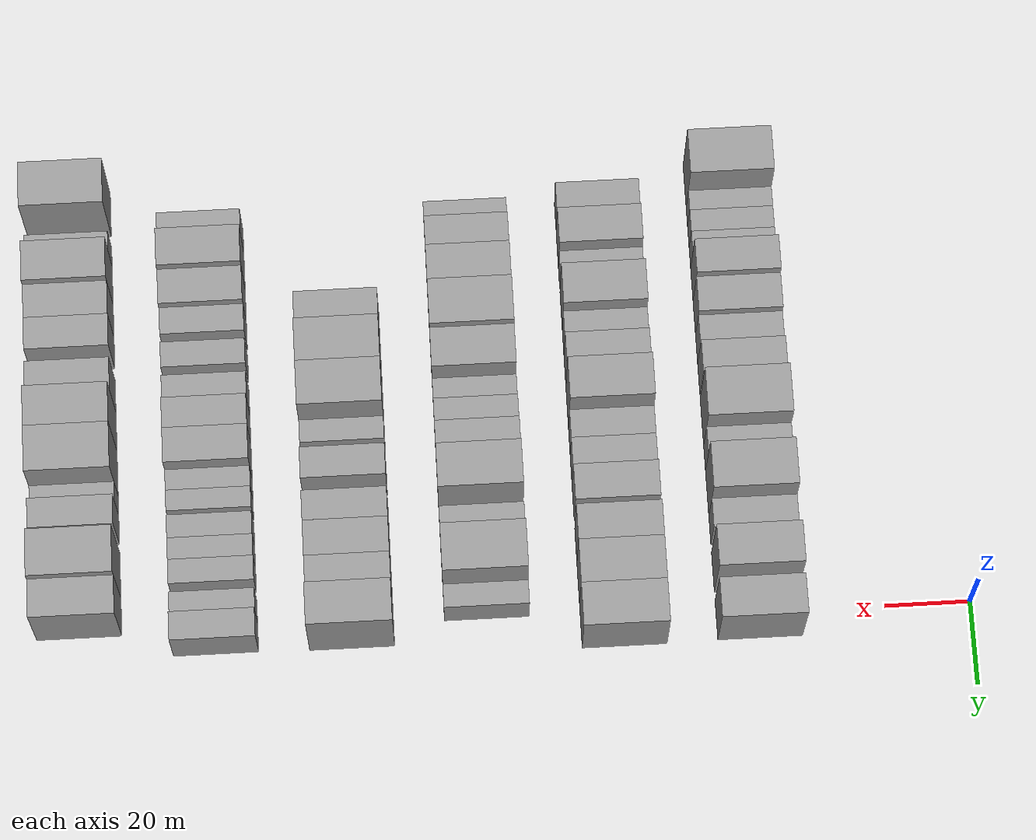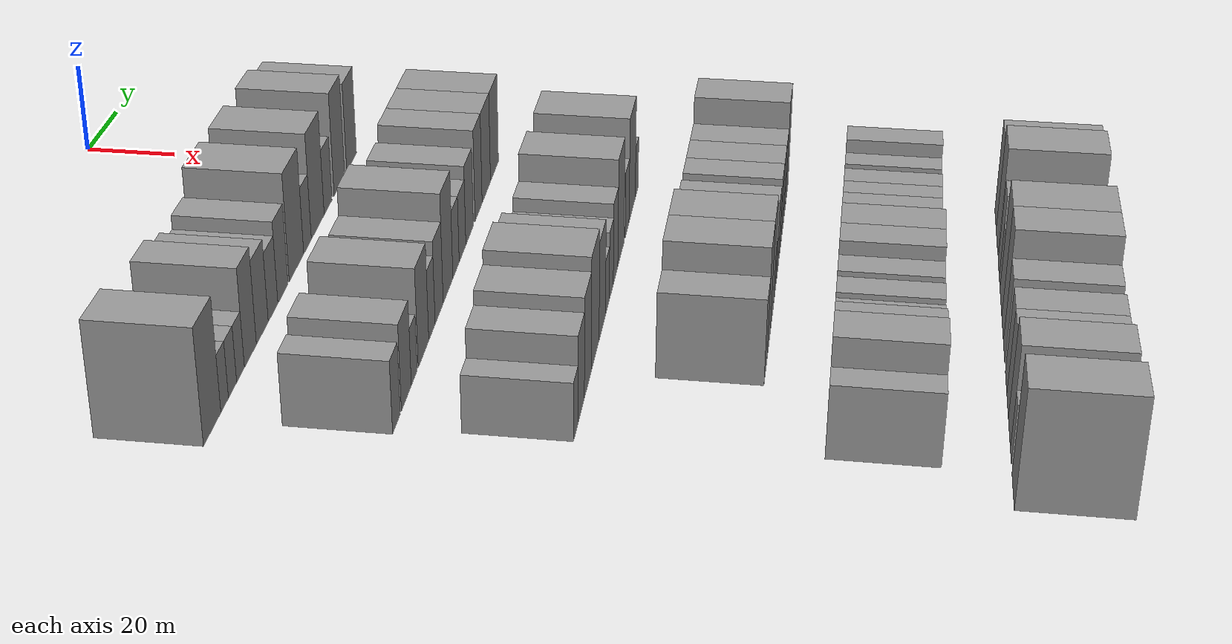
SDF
<sdf version="1.6">
 <world name="default">
  <model name="building_53">
   <static>1</static>
   <pose>50.0000 -108.2480 0 0.000000 0.000000 0.000000</pose>
   <link name="link">
    <pose>0 0 12.00 0 0 0</pose>
    <collision name="collision"><geometry><box><size>20.0000 11.0234 24.0000</size></box></geometry></collision>
    <visual name="visual">
     <cast_shadows>0</cast_shadows>
     <geometry><box><size>20.0000 11.0234 24.0000</size></box></geometry>
     <material>
      <script>
       <uri>model://grey_wall/materials/scripts</uri>
       <uri>model://grey_wall/materials/textures</uri>
       <name>vrc/grey_wall</name>
      </script>
     </material>
    </visual>
   </link>
  </model>
  <model name="building_54">
   <static>1</static>
   <pose>50.0000 -100.2586 0 0.000000 0.000000 0.000000</pose>
   <link name="link">
    <pose>0 0 6.00 0 0 0</pose>
    <collision name="collision"><geometry><box><size>20.0000 4.9554 12.0000</size></box></geometry></collision>
    <visual name="visual">
     <cast_shadows>0</cast_shadows>
     <geometry><box><size>20.0000 4.9554 12.0000</size></box></geometry>
     <material>
      <script>
       <uri>model://grey_wall/materials/scripts</uri>
       <uri>model://grey_wall/materials/textures</uri>
       <name>vrc/grey_wall</name>
      </script>
     </material>
    </visual>
   </link>
  </model>
  <model name="building_55">
   <static>1</static>
   <pose>50.0000 -95.0458 0 0.000000 0.000000 0.000000</pose>
   <link name="link">
    <pose>0 0 6.00 0 0 0</pose>
    <collision name="collision"><geometry><box><size>20.0000 5.4702 12.0000</size></box></geometry></collision>
    <visual name="visual">
     <cast_shadows>0</cast_shadows>
     <geometry><box><size>20.0000 5.4702 12.0000</size></box></geometry>
     <material>
      <script>
       <uri>model://grey_wall/materials/scripts</uri>
       <uri>model://grey_wall/materials/textures</uri>
       <name>vrc/grey_wall</name>
      </script>
     </material>
    </visual>
   </link>
  </model>
  <model name="building_56">
   <static>1</static>
   <pose>50.0000 -89.6483 0 0.000000 0.000000 0.000000</pose>
   <link name="link">
    <pose>0 0 6.00 0 0 0</pose>
    <collision name="collision"><geometry><box><size>20.0000 5.3247 12.0000</size></box></geometry></collision>
    <visual name="visual">
     <cast_shadows>0</cast_shadows>
     <geometry><box><size>20.0000 5.3247 12.0000</size></box></geometry>
     <material>
      <script>
       <uri>model://grey_wall/materials/scripts</uri>
       <uri>model://grey_wall/materials/textures</uri>
       <name>vrc/grey_wall</name>
      </script>
     </material>
    </visual>
   </link>
  </model>
  <model name="building_57">
   <static>1</static>
   <pose>50.0000 -82.7747 0 0.000000 0.000000 0.000000</pose>
   <link name="link">
    <pose>0 0 10.50 0 0 0</pose>
    <collision name="collision"><geometry><box><size>20.0000 8.4225 21.0000</size></box></geometry></collision>
    <visual name="visual">
     <cast_shadows>0</cast_shadows>
     <geometry><box><size>20.0000 8.4225 21.0000</size></box></geometry>
     <material>
      <script>
       <uri>model://grey_wall/materials/scripts</uri>
       <uri>model://grey_wall/materials/textures</uri>
       <name>vrc/grey_wall</name>
      </script>
     </material>
    </visual>
   </link>
  </model>
  <model name="building_58">
   <static>1</static>
   <pose>50.0000 -74.2326 0 0.000000 0.000000 0.000000</pose>
   <link name="link">
    <pose>0 0 9.00 0 0 0</pose>
    <collision name="collision"><geometry><box><size>20.0000 8.6617 18.0000</size></box></geometry></collision>
    <visual name="visual">
     <cast_shadows>0</cast_shadows>
     <geometry><box><size>20.0000 8.6617 18.0000</size></box></geometry>
     <material>
      <script>
       <uri>model://grey_wall/materials/scripts</uri>
       <uri>model://grey_wall/materials/textures</uri>
       <name>vrc/grey_wall</name>
      </script>
     </material>
    </visual>
   </link>
  </model>
  <model name="building_59">
   <static>1</static>
   <pose>50.0000 -66.2687 0 0.000000 0.000000 0.000000</pose>
   <link name="link">
    <pose>0 0 7.50 0 0 0</pose>
    <collision name="collision"><geometry><box><size>20.0000 7.2660 15.0000</size></box></geometry></collision>
    <visual name="visual">
     <cast_shadows>0</cast_shadows>
     <geometry><box><size>20.0000 7.2660 15.0000</size></box></geometry>
     <material>
      <script>
       <uri>model://grey_wall/materials/scripts</uri>
       <uri>model://grey_wall/materials/textures</uri>
       <name>vrc/grey_wall</name>
      </script>
     </material>
    </visual>
   </link>
  </model>
  <model name="building_60">
   <static>1</static>
   <pose>50.0000 -58.7172 0 0.000000 0.000000 0.000000</pose>
   <link name="link">
    <pose>0 0 9.00 0 0 0</pose>
    <collision name="collision"><geometry><box><size>20.0000 7.8371 18.0000</size></box></geometry></collision>
    <visual name="visual">
     <cast_shadows>0</cast_shadows>
     <geometry><box><size>20.0000 7.8371 18.0000</size></box></geometry>
     <material>
      <script>
       <uri>model://grey_wall/materials/scripts</uri>
       <uri>model://grey_wall/materials/textures</uri>
       <name>vrc/grey_wall</name>
      </script>
     </material>
    </visual>
   </link>
  </model>
  <model name="building_61">
   <static>1</static>
   <pose>50.0000 -47.9027 0 0.000000 0.000000 0.000000</pose>
   <link name="link">
    <pose>0 0 12.00 0 0 0</pose>
    <collision name="collision"><geometry><box><size>20.0000 11.7918 24.0000</size></box></geometry></collision>
    <visual name="visual">
     <cast_shadows>0</cast_shadows>
     <geometry><box><size>20.0000 11.7918 24.0000</size></box></geometry>
     <material>
      <script>
       <uri>model://grey_wall/materials/scripts</uri>
       <uri>model://grey_wall/materials/textures</uri>
       <name>vrc/grey_wall</name>
      </script>
     </material>
    </visual>
   </link>
  </model>
  <model name="building_62">
   <static>1</static>
   <pose>50.0000 -38.7945 0 0.000000 0.000000 0.000000</pose>
   <link name="link">
    <pose>0 0 7.50 0 0 0</pose>
    <collision name="collision"><geometry><box><size>20.0000 6.4246 15.0000</size></box></geometry></collision>
    <visual name="visual">
     <cast_shadows>0</cast_shadows>
     <geometry><box><size>20.0000 6.4246 15.0000</size></box></geometry>
     <material>
      <script>
       <uri>model://grey_wall/materials/scripts</uri>
       <uri>model://grey_wall/materials/textures</uri>
       <name>vrc/grey_wall</name>
      </script>
     </material>
    </visual>
   </link>
  </model>
  <model name="building_63">
   <static>1</static>
   <pose>50.0000 -29.9969 0 0.000000 0.000000 0.000000</pose>
   <link name="link">
    <pose>0 0 12.00 0 0 0</pose>
    <collision name="collision"><geometry><box><size>20.0000 11.1705 24.0000</size></box></geometry></collision>
    <visual name="visual">
     <cast_shadows>0</cast_shadows>
     <geometry><box><size>20.0000 11.1705 24.0000</size></box></geometry>
     <material>
      <script>
       <uri>model://grey_wall/materials/scripts</uri>
       <uri>model://grey_wall/materials/textures</uri>
       <name>vrc/grey_wall</name>
      </script>
     </material>
    </visual>
   </link>
  </model>
  <model name="building_64">
   <static>1</static>
   <pose>50.0000 -20.9240 0 0.000000 0.000000 0.000000</pose>
   <link name="link">
    <pose>0 0 7.50 0 0 0</pose>
    <collision name="collision"><geometry><box><size>20.0000 6.9754 15.0000</size></box></geometry></collision>
    <visual name="visual">
     <cast_shadows>0</cast_shadows>
     <geometry><box><size>20.0000 6.9754 15.0000</size></box></geometry>
     <material>
      <script>
       <uri>model://grey_wall/materials/scripts</uri>
       <uri>model://grey_wall/materials/textures</uri>
       <name>vrc/grey_wall</name>
      </script>
     </material>
    </visual>
   </link>
  </model>
  <model name="building_65">
   <static>1</static>
   <pose>50.0000 -10.5199 0 0.000000 0.000000 0.000000</pose>
   <link name="link">
    <pose>0 0 12.00 0 0 0</pose>
    <collision name="collision"><geometry><box><size>20.0000 9.8328 24.0000</size></box></geometry></collision>
    <visual name="visual">
     <cast_shadows>0</cast_shadows>
     <geometry><box><size>20.0000 9.8328 24.0000</size></box></geometry>
     <material>
      <script>
       <uri>model://grey_wall/materials/scripts</uri>
       <uri>model://grey_wall/materials/textures</uri>
       <name>vrc/grey_wall</name>
      </script>
     </material>
    </visual>
   </link>
  </model>
  <model name="building_66">
   <static>1</static>
   <pose>50.0000 1.1582 0 0.000000 0.000000 0.000000</pose>
   <link name="link">
    <pose>0 0 10.50 0 0 0</pose>
    <collision name="collision"><geometry><box><size>20.0000 9.5234 21.0000</size></box></geometry></collision>
    <visual name="visual">
     <cast_shadows>0</cast_shadows>
     <geometry><box><size>20.0000 9.5234 21.0000</size></box></geometry>
     <material>
      <script>
       <uri>model://grey_wall/materials/scripts</uri>
       <uri>model://grey_wall/materials/textures</uri>
       <name>vrc/grey_wall</name>
      </script>
     </material>
    </visual>
   </link>
  </model>
  <model name="building_182">
   <static>1</static>
   <pose>82.0000 -102.0957 0 0.000000 0.000000 0.000000</pose>
   <link name="link">
    <pose>0 0 7.50 0 0 0</pose>
    <collision name="collision"><geometry><box><size>20.0000 6.5473 15.0000</size></box></geometry></collision>
    <visual name="visual">
     <cast_shadows>0</cast_shadows>
     <geometry><box><size>20.0000 6.5473 15.0000</size></box></geometry>
     <material>
      <script>
       <uri>model://grey_wall/materials/scripts</uri>
       <uri>model://grey_wall/materials/textures</uri>
       <name>vrc/grey_wall</name>
      </script>
     </material>
    </visual>
   </link>
  </model>
  <model name="building_183">
   <static>1</static>
   <pose>82.0000 -93.3985 0 0.000000 0.000000 0.000000</pose>
   <link name="link">
    <pose>0 0 9.00 0 0 0</pose>
    <collision name="collision"><geometry><box><size>20.0000 8.8470 18.0000</size></box></geometry></collision>
    <visual name="visual">
     <cast_shadows>0</cast_shadows>
     <geometry><box><size>20.0000 8.8470 18.0000</size></box></geometry>
     <material>
      <script>
       <uri>model://grey_wall/materials/scripts</uri>
       <uri>model://grey_wall/materials/textures</uri>
       <name>vrc/grey_wall</name>
      </script>
     </material>
    </visual>
   </link>
  </model>
  <model name="building_184">
   <static>1</static>
   <pose>82.0000 -86.3039 0 0.000000 0.000000 0.000000</pose>
   <link name="link">
    <pose>0 0 6.00 0 0 0</pose>
    <collision name="collision"><geometry><box><size>20.0000 5.3422 12.0000</size></box></geometry></collision>
    <visual name="visual">
     <cast_shadows>0</cast_shadows>
     <geometry><box><size>20.0000 5.3422 12.0000</size></box></geometry>
     <material>
      <script>
       <uri>model://grey_wall/materials/scripts</uri>
       <uri>model://grey_wall/materials/textures</uri>
       <name>vrc/grey_wall</name>
      </script>
     </material>
    </visual>
   </link>
  </model>
  <model name="building_185">
   <static>1</static>
   <pose>82.0000 -77.6232 0 0.000000 0.000000 0.000000</pose>
   <link name="link">
    <pose>0 0 10.50 0 0 0</pose>
    <collision name="collision"><geometry><box><size>20.0000 10.0193 21.0000</size></box></geometry></collision>
    <visual name="visual">
     <cast_shadows>0</cast_shadows>
     <geometry><box><size>20.0000 10.0193 21.0000</size></box></geometry>
     <material>
      <script>
       <uri>model://grey_wall/materials/scripts</uri>
       <uri>model://grey_wall/materials/textures</uri>
       <name>vrc/grey_wall</name>
      </script>
     </material>
    </visual>
   </link>
  </model>
  <model name="building_186">
   <static>1</static>
   <pose>82.0000 -69.4738 0 0.000000 0.000000 0.000000</pose>
   <link name="link">
    <pose>0 0 7.50 0 0 0</pose>
    <collision name="collision"><geometry><box><size>20.0000 6.2795 15.0000</size></box></geometry></collision>
    <visual name="visual">
     <cast_shadows>0</cast_shadows>
     <geometry><box><size>20.0000 6.2795 15.0000</size></box></geometry>
     <material>
      <script>
       <uri>model://grey_wall/materials/scripts</uri>
       <uri>model://grey_wall/materials/textures</uri>
       <name>vrc/grey_wall</name>
      </script>
     </material>
    </visual>
   </link>
  </model>
  <model name="building_187">
   <static>1</static>
   <pose>82.0000 -62.2552 0 0.000000 0.000000 0.000000</pose>
   <link name="link">
    <pose>0 0 9.00 0 0 0</pose>
    <collision name="collision"><geometry><box><size>20.0000 8.1578 18.0000</size></box></geometry></collision>
    <visual name="visual">
     <cast_shadows>0</cast_shadows>
     <geometry><box><size>20.0000 8.1578 18.0000</size></box></geometry>
     <material>
      <script>
       <uri>model://grey_wall/materials/scripts</uri>
       <uri>model://grey_wall/materials/textures</uri>
       <name>vrc/grey_wall</name>
      </script>
     </material>
    </visual>
   </link>
  </model>
  <model name="building_188">
   <static>1</static>
   <pose>82.0000 -53.0809 0 0.000000 0.000000 0.000000</pose>
   <link name="link">
    <pose>0 0 12.00 0 0 0</pose>
    <collision name="collision"><geometry><box><size>20.0000 10.1907 24.0000</size></box></geometry></collision>
    <visual name="visual">
     <cast_shadows>0</cast_shadows>
     <geometry><box><size>20.0000 10.1907 24.0000</size></box></geometry>
     <material>
      <script>
       <uri>model://grey_wall/materials/scripts</uri>
       <uri>model://grey_wall/materials/textures</uri>
       <name>vrc/grey_wall</name>
      </script>
     </material>
    </visual>
   </link>
  </model>
  <model name="building_189">
   <static>1</static>
   <pose>82.0000 -44.5590 0 0.000000 0.000000 0.000000</pose>
   <link name="link">
    <pose>0 0 7.50 0 0 0</pose>
    <collision name="collision"><geometry><box><size>20.0000 6.8531 15.0000</size></box></geometry></collision>
    <visual name="visual">
     <cast_shadows>0</cast_shadows>
     <geometry><box><size>20.0000 6.8531 15.0000</size></box></geometry>
     <material>
      <script>
       <uri>model://grey_wall/materials/scripts</uri>
       <uri>model://grey_wall/materials/textures</uri>
       <name>vrc/grey_wall</name>
      </script>
     </material>
    </visual>
   </link>
  </model>
  <model name="building_190">
   <static>1</static>
   <pose>82.0000 -37.4028 0 0.000000 0.000000 0.000000</pose>
   <link name="link">
    <pose>0 0 7.50 0 0 0</pose>
    <collision name="collision"><geometry><box><size>20.0000 7.4593 15.0000</size></box></geometry></collision>
    <visual name="visual">
     <cast_shadows>0</cast_shadows>
     <geometry><box><size>20.0000 7.4593 15.0000</size></box></geometry>
     <material>
      <script>
       <uri>model://grey_wall/materials/scripts</uri>
       <uri>model://grey_wall/materials/textures</uri>
       <name>vrc/grey_wall</name>
      </script>
     </material>
    </visual>
   </link>
  </model>
  <model name="building_191">
   <static>1</static>
   <pose>82.0000 -29.3570 0 0.000000 0.000000 0.000000</pose>
   <link name="link">
    <pose>0 0 9.00 0 0 0</pose>
    <collision name="collision"><geometry><box><size>20.0000 8.6322 18.0000</size></box></geometry></collision>
    <visual name="visual">
     <cast_shadows>0</cast_shadows>
     <geometry><box><size>20.0000 8.6322 18.0000</size></box></geometry>
     <material>
      <script>
       <uri>model://grey_wall/materials/scripts</uri>
       <uri>model://grey_wall/materials/textures</uri>
       <name>vrc/grey_wall</name>
      </script>
     </material>
    </visual>
   </link>
  </model>
  <model name="building_192">
   <static>1</static>
   <pose>82.0000 -18.7790 0 0.000000 0.000000 0.000000</pose>
   <link name="link">
    <pose>0 0 10.50 0 0 0</pose>
    <collision name="collision"><geometry><box><size>20.0000 8.5237 21.0000</size></box></geometry></collision>
    <visual name="visual">
     <cast_shadows>0</cast_shadows>
     <geometry><box><size>20.0000 8.5237 21.0000</size></box></geometry>
     <material>
      <script>
       <uri>model://grey_wall/materials/scripts</uri>
       <uri>model://grey_wall/materials/textures</uri>
       <name>vrc/grey_wall</name>
      </script>
     </material>
    </visual>
   </link>
  </model>
  <model name="building_193">
   <static>1</static>
   <pose>82.0000 -9.3183 0 0.000000 0.000000 0.000000</pose>
   <link name="link">
    <pose>0 0 10.50 0 0 0</pose>
    <collision name="collision"><geometry><box><size>20.0000 10.3978 21.0000</size></box></geometry></collision>
    <visual name="visual">
     <cast_shadows>0</cast_shadows>
     <geometry><box><size>20.0000 10.3978 21.0000</size></box></geometry>
     <material>
      <script>
       <uri>model://grey_wall/materials/scripts</uri>
       <uri>model://grey_wall/materials/textures</uri>
       <name>vrc/grey_wall</name>
      </script>
     </material>
    </visual>
   </link>
  </model>
  <model name="building_194">
   <static>1</static>
   <pose>82.0000 1.0268 0 0.000000 0.000000 0.000000</pose>
   <link name="link">
    <pose>0 0 10.50 0 0 0</pose>
    <collision name="collision"><geometry><box><size>20.0000 10.2924 21.0000</size></box></geometry></collision>
    <visual name="visual">
     <cast_shadows>0</cast_shadows>
     <geometry><box><size>20.0000 10.2924 21.0000</size></box></geometry>
     <material>
      <script>
       <uri>model://grey_wall/materials/scripts</uri>
       <uri>model://grey_wall/materials/textures</uri>
       <name>vrc/grey_wall</name>
      </script>
     </material>
    </visual>
   </link>
  </model>
  <model name="building_309">
   <static>1</static>
   <pose>114.0000 -100.3884 0 0.000000 0.000000 0.000000</pose>
   <link name="link">
    <pose>0 0 6.00 0 0 0</pose>
    <collision name="collision"><geometry><box><size>20.0000 5.8942 12.0000</size></box></geometry></collision>
    <visual name="visual">
     <cast_shadows>0</cast_shadows>
     <geometry><box><size>20.0000 5.8942 12.0000</size></box></geometry>
     <material>
      <script>
       <uri>model://grey_wall/materials/scripts</uri>
       <uri>model://grey_wall/materials/textures</uri>
       <name>vrc/grey_wall</name>
      </script>
     </material>
    </visual>
   </link>
  </model>
  <model name="building_310">
   <static>1</static>
   <pose>114.0000 -93.2360 0 0.000000 0.000000 0.000000</pose>
   <link name="link">
    <pose>0 0 9.00 0 0 0</pose>
    <collision name="collision"><geometry><box><size>20.0000 8.4105 18.0000</size></box></geometry></collision>
    <visual name="visual">
     <cast_shadows>0</cast_shadows>
     <geometry><box><size>20.0000 8.4105 18.0000</size></box></geometry>
     <material>
      <script>
       <uri>model://grey_wall/materials/scripts</uri>
       <uri>model://grey_wall/materials/textures</uri>
       <name>vrc/grey_wall</name>
      </script>
     </material>
    </visual>
   </link>
  </model>
  <model name="building_311">
   <static>1</static>
   <pose>114.0000 -84.1753 0 0.000000 0.000000 0.000000</pose>
   <link name="link">
    <pose>0 0 10.50 0 0 0</pose>
    <collision name="collision"><geometry><box><size>20.0000 9.7109 21.0000</size></box></geometry></collision>
    <visual name="visual">
     <cast_shadows>0</cast_shadows>
     <geometry><box><size>20.0000 9.7109 21.0000</size></box></geometry>
     <material>
      <script>
       <uri>model://grey_wall/materials/scripts</uri>
       <uri>model://grey_wall/materials/textures</uri>
       <name>vrc/grey_wall</name>
      </script>
     </material>
    </visual>
   </link>
  </model>
  <model name="building_312">
   <static>1</static>
   <pose>114.0000 -73.7366 0 0.000000 0.000000 0.000000</pose>
   <link name="link">
    <pose>0 0 12.00 0 0 0</pose>
    <collision name="collision"><geometry><box><size>20.0000 11.1665 24.0000</size></box></geometry></collision>
    <visual name="visual">
     <cast_shadows>0</cast_shadows>
     <geometry><box><size>20.0000 11.1665 24.0000</size></box></geometry>
     <material>
      <script>
       <uri>model://grey_wall/materials/scripts</uri>
       <uri>model://grey_wall/materials/textures</uri>
       <name>vrc/grey_wall</name>
      </script>
     </material>
    </visual>
   </link>
  </model>
  <model name="building_313">
   <static>1</static>
   <pose>114.0000 -63.3302 0 0.000000 0.000000 0.000000</pose>
   <link name="link">
    <pose>0 0 10.50 0 0 0</pose>
    <collision name="collision"><geometry><box><size>20.0000 9.6463 21.0000</size></box></geometry></collision>
    <visual name="visual">
     <cast_shadows>0</cast_shadows>
     <geometry><box><size>20.0000 9.6463 21.0000</size></box></geometry>
     <material>
      <script>
       <uri>model://grey_wall/materials/scripts</uri>
       <uri>model://grey_wall/materials/textures</uri>
       <name>vrc/grey_wall</name>
      </script>
     </material>
    </visual>
   </link>
  </model>
  <model name="building_314">
   <static>1</static>
   <pose>114.0000 -55.5286 0 0.000000 0.000000 0.000000</pose>
   <link name="link">
    <pose>0 0 6.00 0 0 0</pose>
    <collision name="collision"><geometry><box><size>20.0000 5.9570 12.0000</size></box></geometry></collision>
    <visual name="visual">
     <cast_shadows>0</cast_shadows>
     <geometry><box><size>20.0000 5.9570 12.0000</size></box></geometry>
     <material>
      <script>
       <uri>model://grey_wall/materials/scripts</uri>
       <uri>model://grey_wall/materials/textures</uri>
       <name>vrc/grey_wall</name>
      </script>
     </material>
    </visual>
   </link>
  </model>
  <model name="building_315">
   <static>1</static>
   <pose>114.0000 -49.3363 0 0.000000 0.000000 0.000000</pose>
   <link name="link">
    <pose>0 0 7.50 0 0 0</pose>
    <collision name="collision"><geometry><box><size>20.0000 6.4277 15.0000</size></box></geometry></collision>
    <visual name="visual">
     <cast_shadows>0</cast_shadows>
     <geometry><box><size>20.0000 6.4277 15.0000</size></box></geometry>
     <material>
      <script>
       <uri>model://grey_wall/materials/scripts</uri>
       <uri>model://grey_wall/materials/textures</uri>
       <name>vrc/grey_wall</name>
      </script>
     </material>
    </visual>
   </link>
  </model>
  <model name="building_316">
   <static>1</static>
   <pose>114.0000 -42.3913 0 0.000000 0.000000 0.000000</pose>
   <link name="link">
    <pose>0 0 9.00 0 0 0</pose>
    <collision name="collision"><geometry><box><size>20.0000 7.4623 18.0000</size></box></geometry></collision>
    <visual name="visual">
     <cast_shadows>0</cast_shadows>
     <geometry><box><size>20.0000 7.4623 18.0000</size></box></geometry>
     <material>
      <script>
       <uri>model://grey_wall/materials/scripts</uri>
       <uri>model://grey_wall/materials/textures</uri>
       <name>vrc/grey_wall</name>
      </script>
     </material>
    </visual>
   </link>
  </model>
  <model name="building_317">
   <static>1</static>
   <pose>114.0000 -33.3519 0 0.000000 0.000000 0.000000</pose>
   <link name="link">
    <pose>0 0 12.00 0 0 0</pose>
    <collision name="collision"><geometry><box><size>20.0000 10.6165 24.0000</size></box></geometry></collision>
    <visual name="visual">
     <cast_shadows>0</cast_shadows>
     <geometry><box><size>20.0000 10.6165 24.0000</size></box></geometry>
     <material>
      <script>
       <uri>model://grey_wall/materials/scripts</uri>
       <uri>model://grey_wall/materials/textures</uri>
       <name>vrc/grey_wall</name>
      </script>
     </material>
    </visual>
   </link>
  </model>
  <model name="building_318">
   <static>1</static>
   <pose>114.0000 -22.6525 0 0.000000 0.000000 0.000000</pose>
   <link name="link">
    <pose>0 0 7.50 0 0 0</pose>
    <collision name="collision"><geometry><box><size>20.0000 6.7824 15.0000</size></box></geometry></collision>
    <visual name="visual">
     <cast_shadows>0</cast_shadows>
     <geometry><box><size>20.0000 6.7824 15.0000</size></box></geometry>
     <material>
      <script>
       <uri>model://grey_wall/materials/scripts</uri>
       <uri>model://grey_wall/materials/textures</uri>
       <name>vrc/grey_wall</name>
      </script>
     </material>
    </visual>
   </link>
  </model>
  <model name="building_319">
   <static>1</static>
   <pose>114.0000 -13.5442 0 0.000000 0.000000 0.000000</pose>
   <link name="link">
    <pose>0 0 12.00 0 0 0</pose>
    <collision name="collision"><geometry><box><size>20.0000 11.4341 24.0000</size></box></geometry></collision>
    <visual name="visual">
     <cast_shadows>0</cast_shadows>
     <geometry><box><size>20.0000 11.4341 24.0000</size></box></geometry>
     <material>
      <script>
       <uri>model://grey_wall/materials/scripts</uri>
       <uri>model://grey_wall/materials/textures</uri>
       <name>vrc/grey_wall</name>
      </script>
     </material>
    </visual>
   </link>
  </model>
  <model name="building_320">
   <static>1</static>
   <pose>114.0000 -5.0023 0 0.000000 0.000000 0.000000</pose>
   <link name="link">
    <pose>0 0 6.00 0 0 0</pose>
    <collision name="collision"><geometry><box><size>20.0000 5.6497 12.0000</size></box></geometry></collision>
    <visual name="visual">
     <cast_shadows>0</cast_shadows>
     <geometry><box><size>20.0000 5.6497 12.0000</size></box></geometry>
     <material>
      <script>
       <uri>model://grey_wall/materials/scripts</uri>
       <uri>model://grey_wall/materials/textures</uri>
       <name>vrc/grey_wall</name>
      </script>
     </material>
    </visual>
   </link>
  </model>
  <model name="building_430">
   <static>1</static>
   <pose>146.0000 -75.6125 0 0.000000 0.000000 0.000000</pose>
   <link name="link">
    <pose>0 0 9.00 0 0 0</pose>
    <collision name="collision"><geometry><box><size>20.0000 8.7544 18.0000</size></box></geometry></collision>
    <visual name="visual">
     <cast_shadows>0</cast_shadows>
     <geometry><box><size>20.0000 8.7544 18.0000</size></box></geometry>
     <material>
      <script>
       <uri>model://grey_wall/materials/scripts</uri>
       <uri>model://grey_wall/materials/textures</uri>
       <name>vrc/grey_wall</name>
      </script>
     </material>
    </visual>
   </link>
  </model>
  <model name="building_431">
   <static>1</static>
   <pose>146.0000 -65.9645 0 0.000000 0.000000 0.000000</pose>
   <link name="link">
    <pose>0 0 12.00 0 0 0</pose>
    <collision name="collision"><geometry><box><size>20.0000 10.5416 24.0000</size></box></geometry></collision>
    <visual name="visual">
     <cast_shadows>0</cast_shadows>
     <geometry><box><size>20.0000 10.5416 24.0000</size></box></geometry>
     <material>
      <script>
       <uri>model://grey_wall/materials/scripts</uri>
       <uri>model://grey_wall/materials/textures</uri>
       <name>vrc/grey_wall</name>
      </script>
     </material>
    </visual>
   </link>
  </model>
  <model name="building_432">
   <static>1</static>
   <pose>146.0000 -55.2646 0 0.000000 0.000000 0.000000</pose>
   <link name="link">
    <pose>0 0 12.00 0 0 0</pose>
    <collision name="collision"><geometry><box><size>20.0000 10.8582 24.0000</size></box></geometry></collision>
    <visual name="visual">
     <cast_shadows>0</cast_shadows>
     <geometry><box><size>20.0000 10.8582 24.0000</size></box></geometry>
     <material>
      <script>
       <uri>model://grey_wall/materials/scripts</uri>
       <uri>model://grey_wall/materials/textures</uri>
       <name>vrc/grey_wall</name>
      </script>
     </material>
    </visual>
   </link>
  </model>
  <model name="building_433">
   <static>1</static>
   <pose>146.0000 -47.0521 0 0.000000 0.000000 0.000000</pose>
   <link name="link">
    <pose>0 0 6.00 0 0 0</pose>
    <collision name="collision"><geometry><box><size>20.0000 5.5669 12.0000</size></box></geometry></collision>
    <visual name="visual">
     <cast_shadows>0</cast_shadows>
     <geometry><box><size>20.0000 5.5669 12.0000</size></box></geometry>
     <material>
      <script>
       <uri>model://grey_wall/materials/scripts</uri>
       <uri>model://grey_wall/materials/textures</uri>
       <name>vrc/grey_wall</name>
      </script>
     </material>
    </visual>
   </link>
  </model>
  <model name="building_434">
   <static>1</static>
   <pose>146.0000 -37.4727 0 0.000000 0.000000 0.000000</pose>
   <link name="link">
    <pose>0 0 9.00 0 0 0</pose>
    <collision name="collision"><geometry><box><size>20.0000 7.5919 18.0000</size></box></geometry></collision>
    <visual name="visual">
     <cast_shadows>0</cast_shadows>
     <geometry><box><size>20.0000 7.5919 18.0000</size></box></geometry>
     <material>
      <script>
       <uri>model://grey_wall/materials/scripts</uri>
       <uri>model://grey_wall/materials/textures</uri>
       <name>vrc/grey_wall</name>
      </script>
     </material>
    </visual>
   </link>
  </model>
  <model name="building_435">
   <static>1</static>
   <pose>146.0000 -27.0277 0 0.000000 0.000000 0.000000</pose>
   <link name="link">
    <pose>0 0 9.00 0 0 0</pose>
    <collision name="collision"><geometry><box><size>20.0000 7.2983 18.0000</size></box></geometry></collision>
    <visual name="visual">
     <cast_shadows>0</cast_shadows>
     <geometry><box><size>20.0000 7.2983 18.0000</size></box></geometry>
     <material>
      <script>
       <uri>model://grey_wall/materials/scripts</uri>
       <uri>model://grey_wall/materials/textures</uri>
       <name>vrc/grey_wall</name>
      </script>
     </material>
    </visual>
   </link>
  </model>
  <model name="building_436">
   <static>1</static>
   <pose>146.0000 -19.1147 0 0.000000 0.000000 0.000000</pose>
   <link name="link">
    <pose>0 0 9.00 0 0 0</pose>
    <collision name="collision"><geometry><box><size>20.0000 8.5275 18.0000</size></box></geometry></collision>
    <visual name="visual">
     <cast_shadows>0</cast_shadows>
     <geometry><box><size>20.0000 8.5275 18.0000</size></box></geometry>
     <material>
      <script>
       <uri>model://grey_wall/materials/scripts</uri>
       <uri>model://grey_wall/materials/textures</uri>
       <name>vrc/grey_wall</name>
      </script>
     </material>
    </visual>
   </link>
  </model>
  <model name="building_437">
   <static>1</static>
   <pose>146.0000 -10.8207 0 0.000000 0.000000 0.000000</pose>
   <link name="link">
    <pose>0 0 9.00 0 0 0</pose>
    <collision name="collision"><geometry><box><size>20.0000 8.0606 18.0000</size></box></geometry></collision>
    <visual name="visual">
     <cast_shadows>0</cast_shadows>
     <geometry><box><size>20.0000 8.0606 18.0000</size></box></geometry>
     <material>
      <script>
       <uri>model://grey_wall/materials/scripts</uri>
       <uri>model://grey_wall/materials/textures</uri>
       <name>vrc/grey_wall</name>
      </script>
     </material>
    </visual>
   </link>
  </model>
  <model name="building_438">
   <static>1</static>
   <pose>146.0000 -1.7424 0 0.000000 0.000000 0.000000</pose>
   <link name="link">
    <pose>0 0 12.00 0 0 0</pose>
    <collision name="collision"><geometry><box><size>20.0000 10.0960 24.0000</size></box></geometry></collision>
    <visual name="visual">
     <cast_shadows>0</cast_shadows>
     <geometry><box><size>20.0000 10.0960 24.0000</size></box></geometry>
     <material>
      <script>
       <uri>model://grey_wall/materials/scripts</uri>
       <uri>model://grey_wall/materials/textures</uri>
       <name>vrc/grey_wall</name>
      </script>
     </material>
    </visual>
   </link>
  </model>
  <model name="building_543">
   <static>1</static>
   <pose>178.0000 -99.6889 0 0.000000 0.000000 0.000000</pose>
   <link name="link">
    <pose>0 0 7.50 0 0 0</pose>
    <collision name="collision"><geometry><box><size>20.0000 6.1740 15.0000</size></box></geometry></collision>
    <visual name="visual">
     <cast_shadows>0</cast_shadows>
     <geometry><box><size>20.0000 6.1740 15.0000</size></box></geometry>
     <material>
      <script>
       <uri>model://grey_wall/materials/scripts</uri>
       <uri>model://grey_wall/materials/textures</uri>
       <name>vrc/grey_wall</name>
      </script>
     </material>
    </visual>
   </link>
  </model>
  <model name="building_544">
   <static>1</static>
   <pose>178.0000 -91.9433 0 0.000000 0.000000 0.000000</pose>
   <link name="link">
    <pose>0 0 10.50 0 0 0</pose>
    <collision name="collision"><geometry><box><size>20.0000 9.3171 21.0000</size></box></geometry></collision>
    <visual name="visual">
     <cast_shadows>0</cast_shadows>
     <geometry><box><size>20.0000 9.3171 21.0000</size></box></geometry>
     <material>
      <script>
       <uri>model://grey_wall/materials/scripts</uri>
       <uri>model://grey_wall/materials/textures</uri>
       <name>vrc/grey_wall</name>
      </script>
     </material>
    </visual>
   </link>
  </model>
  <model name="building_545">
   <static>1</static>
   <pose>178.0000 -82.9770 0 0.000000 0.000000 0.000000</pose>
   <link name="link">
    <pose>0 0 9.00 0 0 0</pose>
    <collision name="collision"><geometry><box><size>20.0000 8.6156 18.0000</size></box></geometry></collision>
    <visual name="visual">
     <cast_shadows>0</cast_shadows>
     <geometry><box><size>20.0000 8.6156 18.0000</size></box></geometry>
     <material>
      <script>
       <uri>model://grey_wall/materials/scripts</uri>
       <uri>model://grey_wall/materials/textures</uri>
       <name>vrc/grey_wall</name>
      </script>
     </material>
    </visual>
   </link>
  </model>
  <model name="building_546">
   <static>1</static>
   <pose>178.0000 -75.3381 0 0.000000 0.000000 0.000000</pose>
   <link name="link">
    <pose>0 0 7.50 0 0 0</pose>
    <collision name="collision"><geometry><box><size>20.0000 6.6621 15.0000</size></box></geometry></collision>
    <visual name="visual">
     <cast_shadows>0</cast_shadows>
     <geometry><box><size>20.0000 6.6621 15.0000</size></box></geometry>
     <material>
      <script>
       <uri>model://grey_wall/materials/scripts</uri>
       <uri>model://grey_wall/materials/textures</uri>
       <name>vrc/grey_wall</name>
      </script>
     </material>
    </visual>
   </link>
  </model>
  <model name="building_547">
   <static>1</static>
   <pose>178.0000 -66.8691 0 0.000000 0.000000 0.000000</pose>
   <link name="link">
    <pose>0 0 7.50 0 0 0</pose>
    <collision name="collision"><geometry><box><size>20.0000 6.2760 15.0000</size></box></geometry></collision>
    <visual name="visual">
     <cast_shadows>0</cast_shadows>
     <geometry><box><size>20.0000 6.2760 15.0000</size></box></geometry>
     <material>
      <script>
       <uri>model://grey_wall/materials/scripts</uri>
       <uri>model://grey_wall/materials/textures</uri>
       <name>vrc/grey_wall</name>
      </script>
     </material>
    </visual>
   </link>
  </model>
  <model name="building_548">
   <static>1</static>
   <pose>178.0000 -58.4733 0 0.000000 0.000000 0.000000</pose>
   <link name="link">
    <pose>0 0 7.50 0 0 0</pose>
    <collision name="collision"><geometry><box><size>20.0000 6.5156 15.0000</size></box></geometry></collision>
    <visual name="visual">
     <cast_shadows>0</cast_shadows>
     <geometry><box><size>20.0000 6.5156 15.0000</size></box></geometry>
     <material>
      <script>
       <uri>model://grey_wall/materials/scripts</uri>
       <uri>model://grey_wall/materials/textures</uri>
       <name>vrc/grey_wall</name>
      </script>
     </material>
    </visual>
   </link>
  </model>
  <model name="building_549">
   <static>1</static>
   <pose>178.0000 -51.4909 0 0.000000 0.000000 0.000000</pose>
   <link name="link">
    <pose>0 0 9.00 0 0 0</pose>
    <collision name="collision"><geometry><box><size>20.0000 7.4491 18.0000</size></box></geometry></collision>
    <visual name="visual">
     <cast_shadows>0</cast_shadows>
     <geometry><box><size>20.0000 7.4491 18.0000</size></box></geometry>
     <material>
      <script>
       <uri>model://grey_wall/materials/scripts</uri>
       <uri>model://grey_wall/materials/textures</uri>
       <name>vrc/grey_wall</name>
      </script>
     </material>
    </visual>
   </link>
  </model>
  <model name="building_550">
   <static>1</static>
   <pose>178.0000 -43.5129 0 0.000000 0.000000 0.000000</pose>
   <link name="link">
    <pose>0 0 9.00 0 0 0</pose>
    <collision name="collision"><geometry><box><size>20.0000 8.5069 18.0000</size></box></geometry></collision>
    <visual name="visual">
     <cast_shadows>0</cast_shadows>
     <geometry><box><size>20.0000 8.5069 18.0000</size></box></geometry>
     <material>
      <script>
       <uri>model://grey_wall/materials/scripts</uri>
       <uri>model://grey_wall/materials/textures</uri>
       <name>vrc/grey_wall</name>
      </script>
     </material>
    </visual>
   </link>
  </model>
  <model name="building_551">
   <static>1</static>
   <pose>178.0000 -36.7416 0 0.000000 0.000000 0.000000</pose>
   <link name="link">
    <pose>0 0 6.00 0 0 0</pose>
    <collision name="collision"><geometry><box><size>20.0000 5.0357 12.0000</size></box></geometry></collision>
    <visual name="visual">
     <cast_shadows>0</cast_shadows>
     <geometry><box><size>20.0000 5.0357 12.0000</size></box></geometry>
     <material>
      <script>
       <uri>model://grey_wall/materials/scripts</uri>
       <uri>model://grey_wall/materials/textures</uri>
       <name>vrc/grey_wall</name>
      </script>
     </material>
    </visual>
   </link>
  </model>
  <model name="building_552">
   <static>1</static>
   <pose>178.0000 -31.6826 0 0.000000 0.000000 0.000000</pose>
   <link name="link">
    <pose>0 0 6.00 0 0 0</pose>
    <collision name="collision"><geometry><box><size>20.0000 5.0823 12.0000</size></box></geometry></collision>
    <visual name="visual">
     <cast_shadows>0</cast_shadows>
     <geometry><box><size>20.0000 5.0823 12.0000</size></box></geometry>
     <material>
      <script>
       <uri>model://grey_wall/materials/scripts</uri>
       <uri>model://grey_wall/materials/textures</uri>
       <name>vrc/grey_wall</name>
      </script>
     </material>
    </visual>
   </link>
  </model>
  <model name="building_553">
   <static>1</static>
   <pose>178.0000 -25.3454 0 0.000000 0.000000 0.000000</pose>
   <link name="link">
    <pose>0 0 6.00 0 0 0</pose>
    <collision name="collision"><geometry><box><size>20.0000 5.5922 12.0000</size></box></geometry></collision>
    <visual name="visual">
     <cast_shadows>0</cast_shadows>
     <geometry><box><size>20.0000 5.5922 12.0000</size></box></geometry>
     <material>
      <script>
       <uri>model://grey_wall/materials/scripts</uri>
       <uri>model://grey_wall/materials/textures</uri>
       <name>vrc/grey_wall</name>
      </script>
     </material>
    </visual>
   </link>
  </model>
  <model name="building_554">
   <static>1</static>
   <pose>178.0000 -19.9188 0 0.000000 0.000000 0.000000</pose>
   <link name="link">
    <pose>0 0 6.00 0 0 0</pose>
    <collision name="collision"><geometry><box><size>20.0000 5.2610 12.0000</size></box></geometry></collision>
    <visual name="visual">
     <cast_shadows>0</cast_shadows>
     <geometry><box><size>20.0000 5.2610 12.0000</size></box></geometry>
     <material>
      <script>
       <uri>model://grey_wall/materials/scripts</uri>
       <uri>model://grey_wall/materials/textures</uri>
       <name>vrc/grey_wall</name>
      </script>
     </material>
    </visual>
   </link>
  </model>
  <model name="building_555">
   <static>1</static>
   <pose>178.0000 -14.3501 0 0.000000 0.000000 0.000000</pose>
   <link name="link">
    <pose>0 0 6.00 0 0 0</pose>
    <collision name="collision"><geometry><box><size>20.0000 5.8763 12.0000</size></box></geometry></collision>
    <visual name="visual">
     <cast_shadows>0</cast_shadows>
     <geometry><box><size>20.0000 5.8763 12.0000</size></box></geometry>
     <material>
      <script>
       <uri>model://grey_wall/materials/scripts</uri>
       <uri>model://grey_wall/materials/textures</uri>
       <name>vrc/grey_wall</name>
      </script>
     </material>
    </visual>
   </link>
  </model>
  <model name="building_556">
   <static>1</static>
   <pose>178.0000 -6.6283 0 0.000000 0.000000 0.000000</pose>
   <link name="link">
    <pose>0 0 6.00 0 0 0</pose>
    <collision name="collision"><geometry><box><size>20.0000 5.5673 12.0000</size></box></geometry></collision>
    <visual name="visual">
     <cast_shadows>0</cast_shadows>
     <geometry><box><size>20.0000 5.5673 12.0000</size></box></geometry>
     <material>
      <script>
       <uri>model://grey_wall/materials/scripts</uri>
       <uri>model://grey_wall/materials/textures</uri>
       <name>vrc/grey_wall</name>
      </script>
     </material>
    </visual>
   </link>
  </model>
  <model name="building_557">
   <static>1</static>
   <pose>178.0000 -0.4269 0 0.000000 0.000000 0.000000</pose>
   <link name="link">
    <pose>0 0 7.50 0 0 0</pose>
    <collision name="collision"><geometry><box><size>20.0000 6.8354 15.0000</size></box></geometry></collision>
    <visual name="visual">
     <cast_shadows>0</cast_shadows>
     <geometry><box><size>20.0000 6.8354 15.0000</size></box></geometry>
     <material>
      <script>
       <uri>model://grey_wall/materials/scripts</uri>
       <uri>model://grey_wall/materials/textures</uri>
       <name>vrc/grey_wall</name>
      </script>
     </material>
    </visual>
   </link>
  </model>
  <model name="building_672">
   <static>1</static>
   <pose>210.0000 -108.4608 0 0.000000 0.000000 0.000000</pose>
   <link name="link">
    <pose>0 0 12.00 0 0 0</pose>
    <collision name="collision"><geometry><box><size>20.0000 11.0819 24.0000</size></box></geometry></collision>
    <visual name="visual">
     <cast_shadows>0</cast_shadows>
     <geometry><box><size>20.0000 11.0819 24.0000</size></box></geometry>
     <material>
      <script>
       <uri>model://grey_wall/materials/scripts</uri>
       <uri>model://grey_wall/materials/textures</uri>
       <name>vrc/grey_wall</name>
      </script>
     </material>
    </visual>
   </link>
  </model>
  <model name="building_673">
   <static>1</static>
   <pose>210.0000 -97.5015 0 0.000000 0.000000 0.000000</pose>
   <link name="link">
    <pose>0 0 6.00 0 0 0</pose>
    <collision name="collision"><geometry><box><size>20.0000 4.8367 12.0000</size></box></geometry></collision>
    <visual name="visual">
     <cast_shadows>0</cast_shadows>
     <geometry><box><size>20.0000 4.8367 12.0000</size></box></geometry>
     <material>
      <script>
       <uri>model://grey_wall/materials/scripts</uri>
       <uri>model://grey_wall/materials/textures</uri>
       <name>vrc/grey_wall</name>
      </script>
     </material>
    </visual>
   </link>
  </model>
  <model name="building_674">
   <static>1</static>
   <pose>210.0000 -90.1386 0 0.000000 0.000000 0.000000</pose>
   <link name="link">
    <pose>0 0 10.50 0 0 0</pose>
    <collision name="collision"><geometry><box><size>20.0000 9.8892 21.0000</size></box></geometry></collision>
    <visual name="visual">
     <cast_shadows>0</cast_shadows>
     <geometry><box><size>20.0000 9.8892 21.0000</size></box></geometry>
     <material>
      <script>
       <uri>model://grey_wall/materials/scripts</uri>
       <uri>model://grey_wall/materials/textures</uri>
       <name>vrc/grey_wall</name>
      </script>
     </material>
    </visual>
   </link>
  </model>
  <model name="building_675">
   <static>1</static>
   <pose>210.0000 -81.0297 0 0.000000 0.000000 0.000000</pose>
   <link name="link">
    <pose>0 0 9.00 0 0 0</pose>
    <collision name="collision"><geometry><box><size>20.0000 8.3285 18.0000</size></box></geometry></collision>
    <visual name="visual">
     <cast_shadows>0</cast_shadows>
     <geometry><box><size>20.0000 8.3285 18.0000</size></box></geometry>
     <material>
      <script>
       <uri>model://grey_wall/materials/scripts</uri>
       <uri>model://grey_wall/materials/textures</uri>
       <name>vrc/grey_wall</name>
      </script>
     </material>
    </visual>
   </link>
  </model>
  <model name="building_676">
   <static>1</static>
   <pose>210.0000 -72.9116 0 0.000000 0.000000 0.000000</pose>
   <link name="link">
    <pose>0 0 9.00 0 0 0</pose>
    <collision name="collision"><geometry><box><size>20.0000 7.9078 18.0000</size></box></geometry></collision>
    <visual name="visual">
     <cast_shadows>0</cast_shadows>
     <geometry><box><size>20.0000 7.9078 18.0000</size></box></geometry>
     <material>
      <script>
       <uri>model://grey_wall/materials/scripts</uri>
       <uri>model://grey_wall/materials/textures</uri>
       <name>vrc/grey_wall</name>
      </script>
     </material>
    </visual>
   </link>
  </model>
  <model name="building_677">
   <static>1</static>
   <pose>210.0000 -61.9305 0 0.000000 0.000000 0.000000</pose>
   <link name="link">
    <pose>0 0 9.00 0 0 0</pose>
    <collision name="collision"><geometry><box><size>20.0000 8.0542 18.0000</size></box></geometry></collision>
    <visual name="visual">
     <cast_shadows>0</cast_shadows>
     <geometry><box><size>20.0000 8.0542 18.0000</size></box></geometry>
     <material>
      <script>
       <uri>model://grey_wall/materials/scripts</uri>
       <uri>model://grey_wall/materials/textures</uri>
       <name>vrc/grey_wall</name>
      </script>
     </material>
    </visual>
   </link>
  </model>
  <model name="building_678">
   <static>1</static>
   <pose>210.0000 -53.0159 0 0.000000 0.000000 0.000000</pose>
   <link name="link">
    <pose>0 0 12.00 0 0 0</pose>
    <collision name="collision"><geometry><box><size>20.0000 9.7750 24.0000</size></box></geometry></collision>
    <visual name="visual">
     <cast_shadows>0</cast_shadows>
     <geometry><box><size>20.0000 9.7750 24.0000</size></box></geometry>
     <material>
      <script>
       <uri>model://grey_wall/materials/scripts</uri>
       <uri>model://grey_wall/materials/textures</uri>
       <name>vrc/grey_wall</name>
      </script>
     </material>
    </visual>
   </link>
  </model>
  <model name="building_679">
   <static>1</static>
   <pose>210.0000 -42.5788 0 0.000000 0.000000 0.000000</pose>
   <link name="link">
    <pose>0 0 12.00 0 0 0</pose>
    <collision name="collision"><geometry><box><size>20.0000 11.0993 24.0000</size></box></geometry></collision>
    <visual name="visual">
     <cast_shadows>0</cast_shadows>
     <geometry><box><size>20.0000 11.0993 24.0000</size></box></geometry>
     <material>
      <script>
       <uri>model://grey_wall/materials/scripts</uri>
       <uri>model://grey_wall/materials/textures</uri>
       <name>vrc/grey_wall</name>
      </script>
     </material>
    </visual>
   </link>
  </model>
  <model name="building_680">
   <static>1</static>
   <pose>210.0000 -34.6005 0 0.000000 0.000000 0.000000</pose>
   <link name="link">
    <pose>0 0 6.00 0 0 0</pose>
    <collision name="collision"><geometry><box><size>20.0000 4.8574 12.0000</size></box></geometry></collision>
    <visual name="visual">
     <cast_shadows>0</cast_shadows>
     <geometry><box><size>20.0000 4.8574 12.0000</size></box></geometry>
     <material>
      <script>
       <uri>model://grey_wall/materials/scripts</uri>
       <uri>model://grey_wall/materials/textures</uri>
       <name>vrc/grey_wall</name>
      </script>
     </material>
    </visual>
   </link>
  </model>
  <model name="building_681">
   <static>1</static>
   <pose>210.0000 -28.5682 0 0.000000 0.000000 0.000000</pose>
   <link name="link">
    <pose>0 0 9.00 0 0 0</pose>
    <collision name="collision"><geometry><box><size>20.0000 7.2072 18.0000</size></box></geometry></collision>
    <visual name="visual">
     <cast_shadows>0</cast_shadows>
     <geometry><box><size>20.0000 7.2072 18.0000</size></box></geometry>
     <material>
      <script>
       <uri>model://grey_wall/materials/scripts</uri>
       <uri>model://grey_wall/materials/textures</uri>
       <name>vrc/grey_wall</name>
      </script>
     </material>
    </visual>
   </link>
  </model>
  <model name="building_682">
   <static>1</static>
   <pose>210.0000 -17.3407 0 0.000000 0.000000 0.000000</pose>
   <link name="link">
    <pose>0 0 12.00 0 0 0</pose>
    <collision name="collision"><geometry><box><size>20.0000 11.2479 24.0000</size></box></geometry></collision>
    <visual name="visual">
     <cast_shadows>0</cast_shadows>
     <geometry><box><size>20.0000 11.2479 24.0000</size></box></geometry>
     <material>
      <script>
       <uri>model://grey_wall/materials/scripts</uri>
       <uri>model://grey_wall/materials/textures</uri>
       <name>vrc/grey_wall</name>
      </script>
     </material>
    </visual>
   </link>
  </model>
  <model name="building_683">
   <static>1</static>
   <pose>210.0000 -7.1401 0 0.000000 0.000000 0.000000</pose>
   <link name="link">
    <pose>0 0 10.50 0 0 0</pose>
    <collision name="collision"><geometry><box><size>20.0000 9.1533 21.0000</size></box></geometry></collision>
    <visual name="visual">
     <cast_shadows>0</cast_shadows>
     <geometry><box><size>20.0000 9.1533 21.0000</size></box></geometry>
     <material>
      <script>
       <uri>model://grey_wall/materials/scripts</uri>
       <uri>model://grey_wall/materials/textures</uri>
       <name>vrc/grey_wall</name>
      </script>
     </material>
    </visual>
   </link>
  </model>
 </world>
</sdf>
